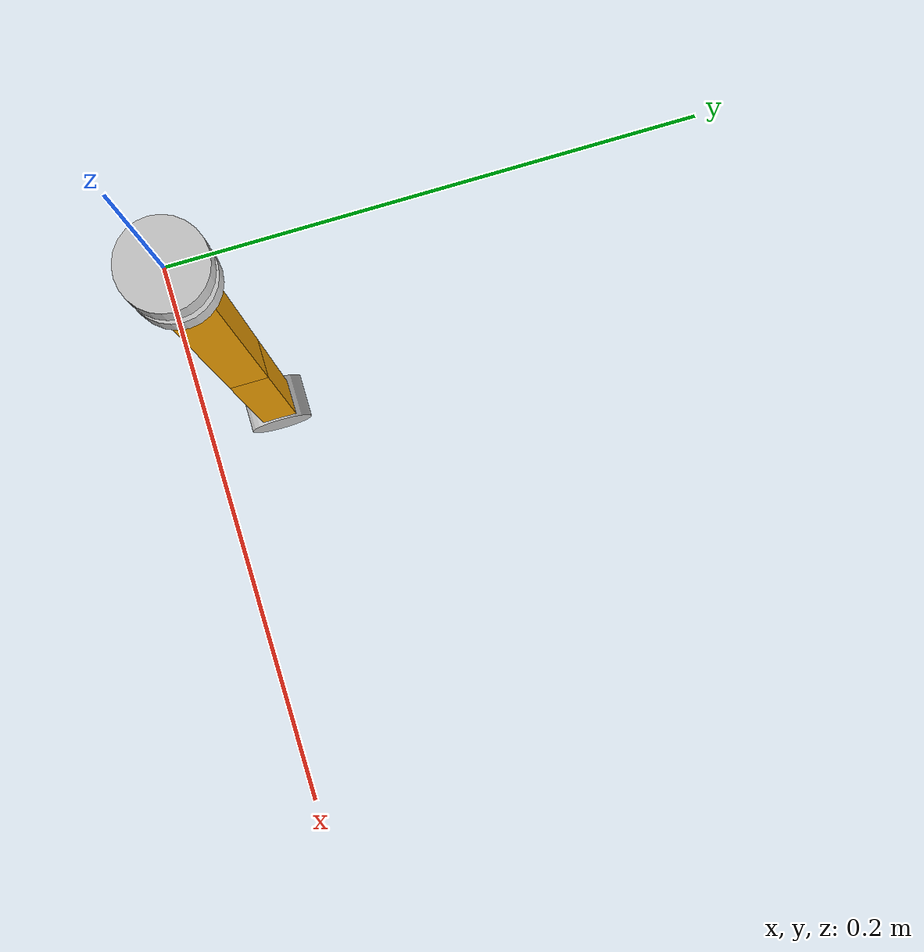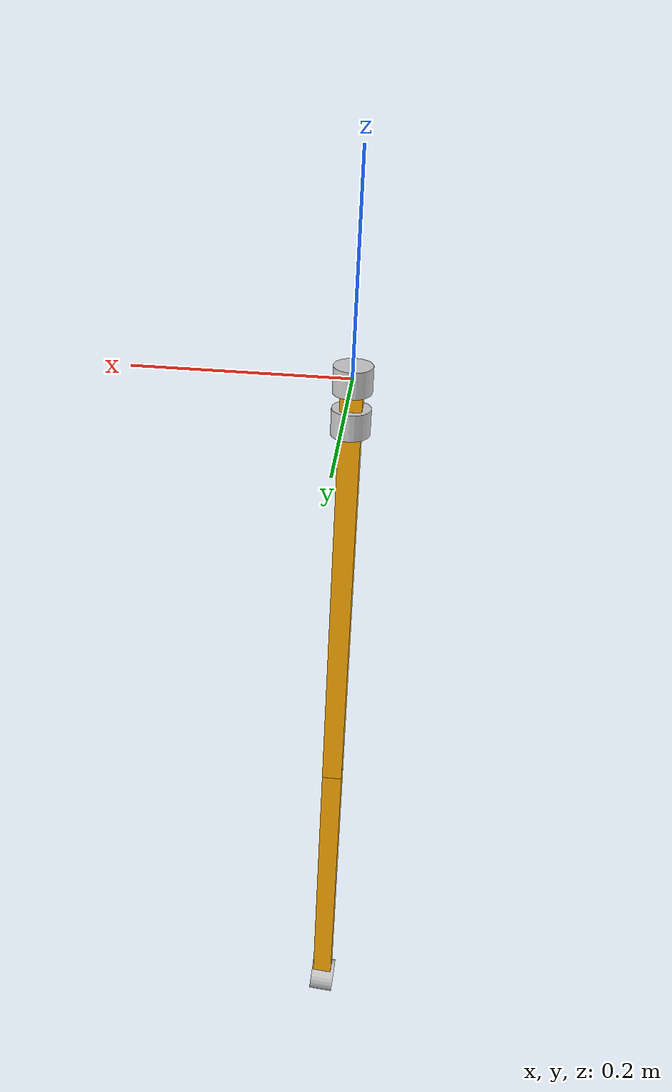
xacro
<?xml version="1.0"?>
<robot name="arm" xmlns:xacro="http://www.ros.org/wiki/xacro">

  <xacro:property name="PI" value="3"/>

  <!-- Joints Control in Gazebo -->
  <gazebo>
    <plugin name="gazebo_ros_control" filename="libgazebo_ros_control.so">
	<robotNamespace>/arm</robotNamespace>
	<robotSimType>gazebo_ros_control/DefaultRobotHWSim</robotSimType>
    </plugin>
  </gazebo>

  <!-- Geometrical properties -->
  <xacro:property name="link_side" value="0.02"/>
  <xacro:property name="joint_radius" value="0.018"/>
  <xacro:property name="joint_length" value="0.025"/>
  <xacro:property name="foot_length" value="0.04"/>
  <xacro:property name="leg_length" value="0.40"/>
  <xacro:property name="arm_length" value="0.30"/>

  <!-- Materials -->
  <material name="orange">
    <color rgba="1.00 0.67 0.02 1.00"/>
  </material>

  <material name="gray">
    <color rgba="0.80 0.80 0.80 1.00"/>
  </material>

  <!-- Generates a box visual/collision/inertial -->
  <xacro:macro name="prism_vci" params="side length mass:=1 *origin">

    <xacro:macro name="prism_geometry">
      <xacro:insert_block name="origin"/>
      <geometry>
        <box size="${side} ${side} ${length}"/>
      </geometry>
    </xacro:macro>

    <visual>
      <xacro:prism_geometry/>
      <material name="orange"/>
    </visual>

    <collision>
      <xacro:prism_geometry/>
    </collision>

    <inertial>
      <xacro:insert_block name="origin"/>
      <mass value="${mass}"/>
      <inertia ixx="${(mass/12)*(side*side+length*length)}"
               iyy="${(mass/12)*(side*side+length*length)}"
               izz="${(mass/6)*(side*side)}"
               ixy="0" ixz="0" iyz="0"/>
    </inertial>

  </xacro:macro>

  <!-- Generates a cylinder visual/collision -->
  <xacro:macro name="cylinder_vc" params="radius length *origin">

    <xacro:macro name="cylinder_geometry">
      <xacro:insert_block name="origin"/>
      <geometry>
        <cylinder length="${length}" radius="${radius}"/>
      </geometry>
    </xacro:macro>

    <visual>
      <xacro:cylinder_geometry/>
      <material name="gray"/>
    </visual>

    <collision>
      <xacro:cylinder_geometry/>
    </collision>

  </xacro:macro>

  <!-- Generates child joint of parent -->
  <xacro:macro name="arm_joint" params="child parent dist:=0 axis">

    <joint name="${parent}_${child}_joint" type="revolute">
      <parent link="${parent}"/>
      <child link="${child}"/>
      <origin xyz="0 0 -${dist}" rpy="0 0 0"/>
      <axis xyz="${axis}"/>
      <limit effort="40.0"
             velocity="1.0"
             lower="${-PI}"
             upper="${PI}"/>
    </joint>

    <!-- Required for ROS control -->
    <transmission name="${parent}_${child}_transmission">
      <type>transmission_interface/SimpleTransmission</type>
      <joint name="${parent}_${child}_joint">
        <hardwareInterface>hardware_interface/EffortJointInterface</hardwareInterface>
      </joint>
      <actuator name="${parent}_${child}_actuator">
         <hardwareInterface>EffortJointInterface</hardwareInterface>
         <mechanicalReduction>1</mechanicalReduction>
      </actuator>
    </transmission>

    <link name="${parent}">

      <xacro:prism_vci length="${dist}" side="${link_side}">
        <origin xyz="0 0 -${dist/2}" rpy="0 0 0"/>
      </xacro:prism_vci>

      <xacro:cylinder_vc radius="${joint_radius}" length="${joint_length}">

        <xacro:if value="${axis=='0 0 1'}">
          <origin xyz="0 0 -${dist}" rpy="0 0 0"/>
        </xacro:if>

        <xacro:if value="${axis=='1 0 0'}">
          <origin xyz="0 0 -${dist}" rpy="0 ${PI/2} 0"/>
        </xacro:if>

        <xacro:if value="${axis=='0 1 0'}">
          <origin xyz="0 0 -${dist}" rpy="${PI/2} 0 0"/>
        </xacro:if>

      </xacro:cylinder_vc>

    </link>

    <gazebo reference="${parent}">
      <material>Gazebo/Orange</material>
    </gazebo>

  </xacro:macro>

  <!-- World frame (for Gazebo) -->
  <link name="world" />

  <!-- Arm fixed to world frame  -->
  <joint name="world_foot_joint" type="fixed">
    <parent link="world"/>
    <child link="foot"/>
    <origin rpy="0.0 0 0.0" xyz="0.0 0.0 0.0"/>
  </joint>

  <!-- Joints Chain -->
  <xacro:arm_joint parent="foot" child="leg" axis="1 0 0" dist="${foot_length}"/>
  <xacro:arm_joint parent="leg" child="arm" axis="1 0 0" dist="${leg_length}"/>

  <!-- End effector -->
    <link name="arm">

      <xacro:prism_vci length="${arm_length}" side="${link_side}">
        <origin xyz="0 0 -${arm_length/2}" rpy="0 0 0"/>
      </xacro:prism_vci>

      <xacro:cylinder_vc radius="${joint_radius}" length="${joint_length}">

          <origin xyz="0 0 -${arm_length}" rpy="0 ${PI/2} 0"/>

      </xacro:cylinder_vc>

    </link>

  <gazebo reference="arm">
    <material>Gazebo/Orange</material>
  </gazebo>

</robot>
